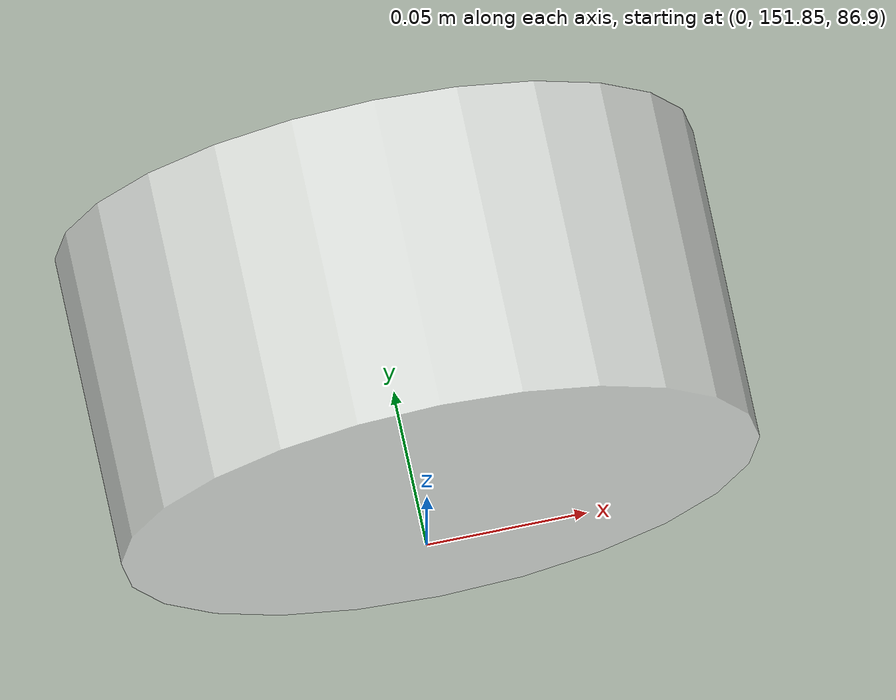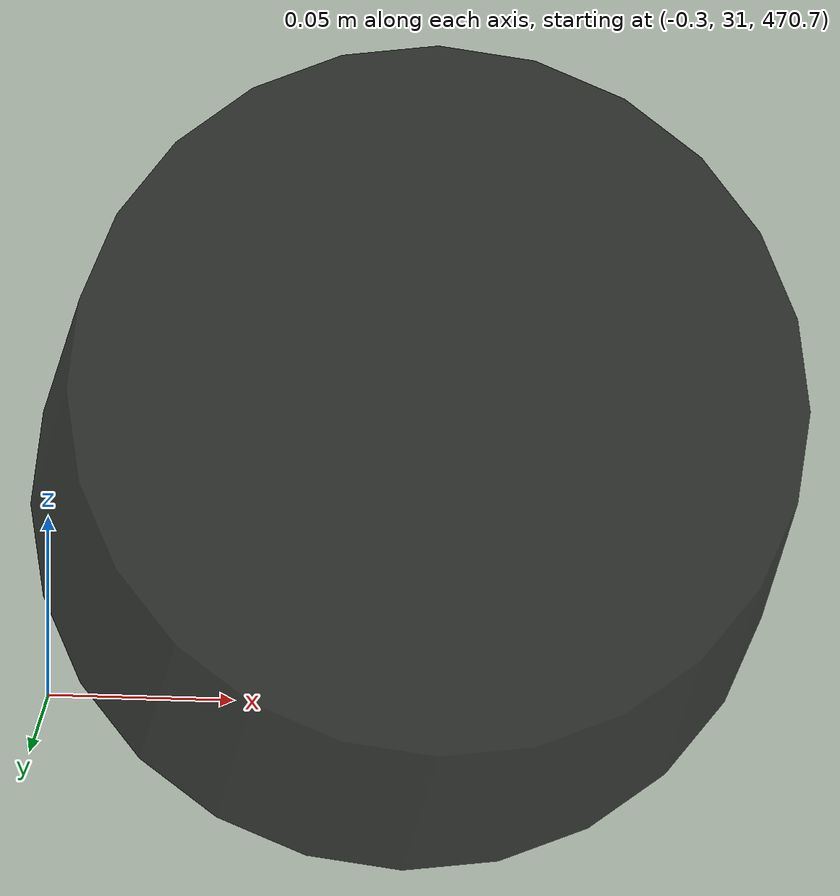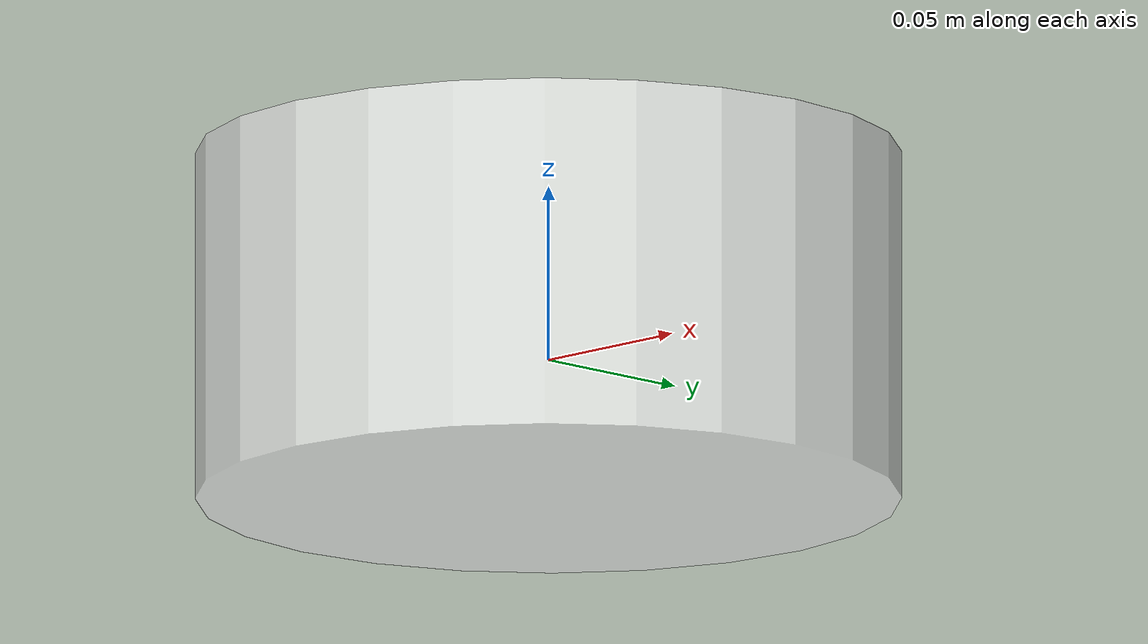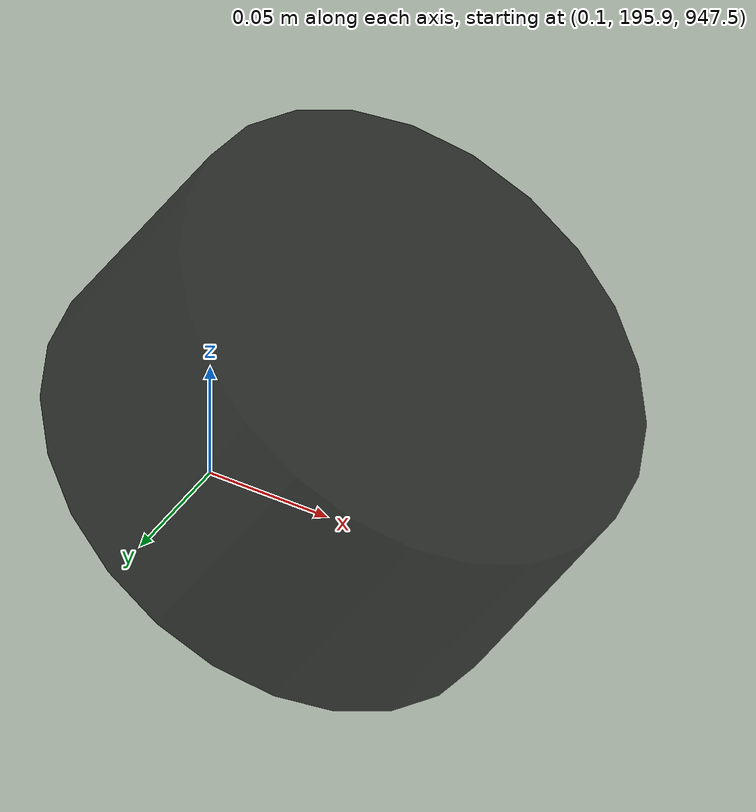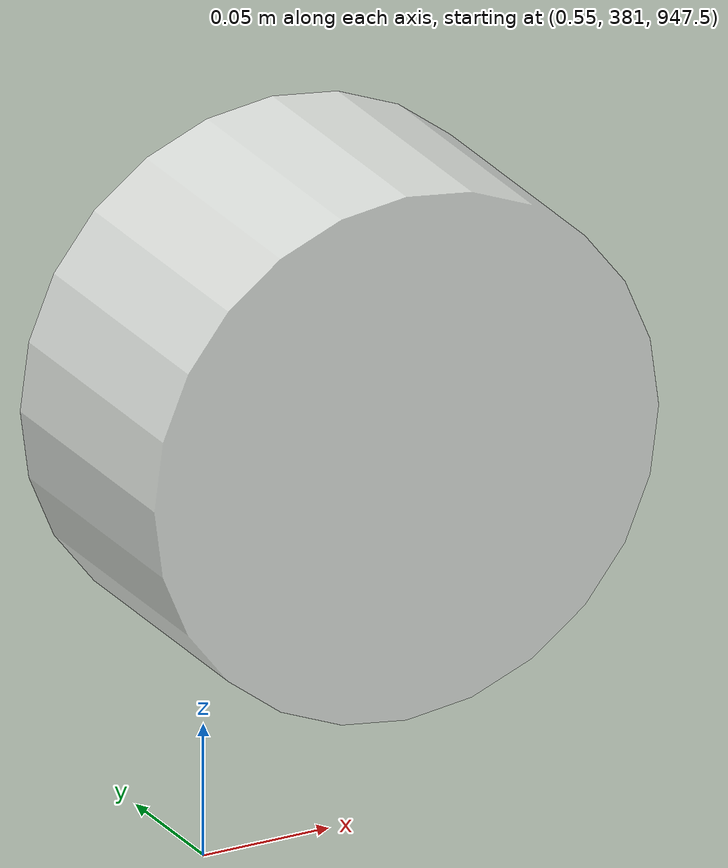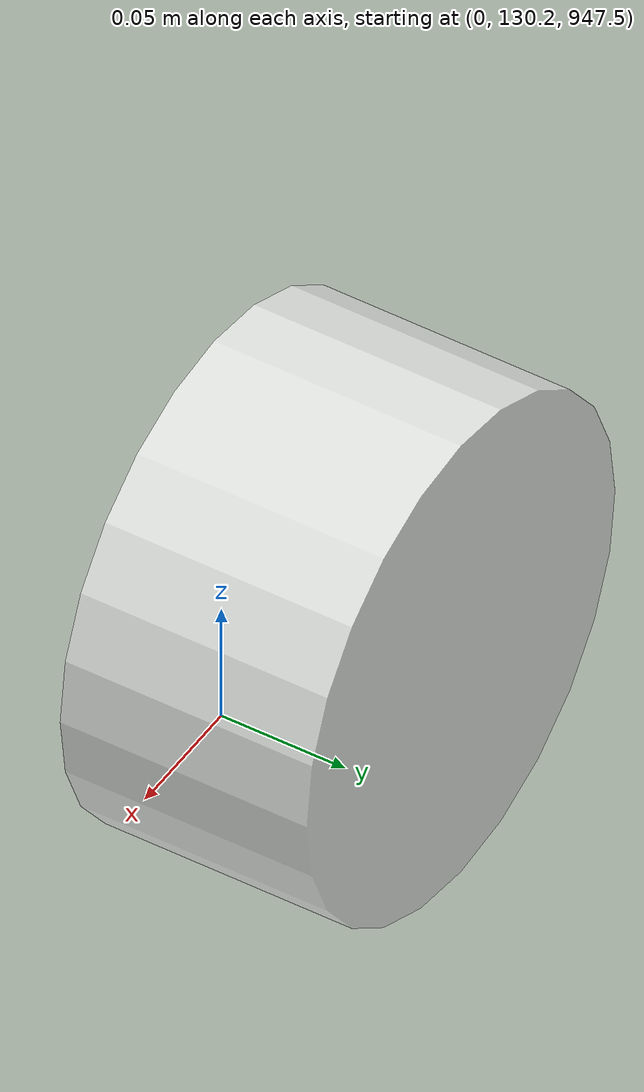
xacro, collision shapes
<?xml version="1.0" ?>
 <robot name="mr5" xmlns:xacro="http://ros.org/wiki/xacro">

  <xacro:include filename="$(find mr5_v5)/urdf/xacro/common.xacro"/>

  <property name="base_mass" value="4.7" />
  <property name="shoulder_mass" value="4.7" />
  <property name="link1" value="1" />
  <property name="elbow" value="2.8" />
  <property name="link2" value="1.6" />
  <property name="wrist1" value="1.6" />
  <property name="wrist2" value="1.6" />
  <property name="wrist3" value="1.6" />

  <link name="base_footprint"/>

  <joint name="base_joint" type="fixed">
    <parent link="base_footprint"/>
    <child link="base" />
    <origin xyz="0 0 0.010" rpy="0 0 ${pi*0.5}"/>
  </joint>

  <link name="base">
      <visual>
        <geometry>
          <mesh filename="package://mr5_v5/urdf/meshes/25BASEPAN.stl" scale="0.1 0.1 0.1"/>
        </geometry>
        <origin xyz="0 0 15" rpy="0 0 0"/>
        <material name ="write"/>
      </visual>
    <collision>
        <geometry>
          <cylinder length="0.1" radius="0.1"/>
        </geometry>
    </collision>

    <xacro:cylinder_inertial length="0.75" radius="0.5" mass="${base_mass}">
    </xacro:cylinder_inertial>
  </link>

  <joint name="joint1" type="revolute">
      <parent link="base"/>
      <child link="mr25_1"/>
      <origin xyz="0 0 87" rpy="0 0 0" />
      <axis xyz="0 0 1"/>
      <limit effort="30" lower="-3.14" upper="3.14" velocity="1.517"/>
    </joint>

  <link name="mr25_1">
      <visual>
        <geometry>
          <mesh filename="package://mr5_v5/urdf/meshes/25_ASM.stl"  scale="0.1 0.1 0.1"/>
        </geometry>
        <!--origin xyz="0 -61.835 43.5" rpy="0 0 0"/-->
        <origin xyz="61.831 0 -15.28" rpy="0 1.57 1.57"/>
        <material name ="black"/>
      </visual>
    <collision>
        <geometry>
          <cylinder length="0.1" radius="0.1"/>
        </geometry>
    </collision>
    <xacro:cylinder_inertial length="0.6" radius="0.2" mass="${shoulder_mass}">
    </xacro:cylinder_inertial>
  </link>

    <joint name="joint2" type="revolute">
      <parent link="mr25_1"/>
      <child link="mr25_2"/>
      <!--origin xyz="-87 0 -151.88" rpy="1.57 -1.57 1.57" /-->
      <origin xyz="151.88 0 0" rpy="0 -1.57 3.14"/>
      <axis xyz="0 0 1"/>
      <limit effort="30" lower="-1.04" upper="1.04" velocity="1.517"/>
    </joint>

    <link name="mr25_2">
      <visual>
        <geometry>
          <!--box size="10 10 151.88"/-->
          <mesh filename="package://mr5_v5/urdf/meshes/25_ASM.stl"  scale="0.1 0.1 0.1"/>
        </geometry>
        <origin xyz="61.831 0 -15.28" rpy="-1.57 1.57 0"/>
        <material name ="write"/>
      </visual>
    <collision>
        <geometry>
          <cylinder length="0.1" radius="0.1"/>
        </geometry>
    </collision>
    <xacro:cylinder_inertial length="0.6" radius="0.2" mass="${link1}">
    </xacro:cylinder_inertial>
    </link>

    <joint name="fix_1" type="revolute">
      <parent link="mr25_2"/>
      <child link="link1"/>
      <origin xyz="0 0 0" rpy="0 0 0" />
      <axis xyz="0 0 1"/>
      <limit effort="0" lower="0" upper="0" velocity="0"/>
    </joint>

  <link name="link1">
      <visual>
        <geometry>
          <!--box size="383.88 10 10 "/-->
          <mesh filename="package://mr5_v5/urdf/meshes/25to20.stl"  scale="0.1 0.1 0.1"/>
        </geometry>
        <origin xyz="157.935 0 0" rpy="0 0 -1.57"/>
        <material name ="black"/>
      </visual>
    <collision>
        <geometry>
          <cylinder length="0.1" radius="0.1"/>
        </geometry>
    </collision>
    <xacro:cylinder_inertial length="0.6" radius="0.2" mass="${elbow}">
    </xacro:cylinder_inertial>
    </link>

    <joint name="fix_2" type="revolute">
      <parent link="link1"/>
      <child link="mr20"/>
      <origin xyz="383.88 0 0" rpy="0 0 0" />
      <axis xyz="0 0 1"/>
      <limit effort="0" lower="0" upper="0" velocity="0"/>
    </joint>

    <link name="mr20">
      <visual>
        <geometry>
          <!--box size="10 10 -120.5 "/-->
          <mesh filename="package://mr5_v5/urdf/meshes/20_ASM.stl"  scale="0.01 0.01 0.01"/>
        </geometry>
        <origin xyz="0 0 55.5" rpy="3.14 0 1.57"/>
        <material name ="write"/>
      </visual>
    <collision>
        <geometry>
          <cylinder length="0.1" radius="0.1"/>
        </geometry>
    </collision>
    <xacro:cylinder_inertial length="0.6" radius="0.2" mass="${link2}">
    </xacro:cylinder_inertial>
    </link>

    <joint name="joint3" type="revolute">
      <parent link="mr20"/>
      <child link="link2_1"/>
      <origin xyz="0 0 -120.5" rpy="0 0 0" />
      <axis xyz="0 0 1"/>
      <limit effort="30" lower="-3.14" upper="0" velocity="1.517"/>
    </joint>

    <link name="link2_1">
      <visual>
        <geometry>
          <!--box size="376.5 10 10 "/-->
          <mesh filename="package://mr5_v5/urdf/meshes/link_elbow.stl"  scale="0.01 0.01 0.01"/>
        </geometry>
        <origin xyz="-54.1 0 0" rpy="-1.57 0 -1.57"/>
        <material name ="black"/>
      </visual>
    <collision>
        <geometry>
          <cylinder length="0.1" radius="0.1"/>
        </geometry>
    </collision>
    <xacro:cylinder_inertial length="0.4" radius="0.2" mass="${wrist1}">
    </xacro:cylinder_inertial>
    </link>

    <joint name="fix_3" type="revolute">
      <parent link="link2_1"/>
      <child link="link2_2"/>
      <origin xyz="0 0 0" rpy="0 0 0" />
      <axis xyz="0 0 1"/>
      <limit effort="0" lower="0" upper="0" velocity="0"/>
    </joint>

    <link name="link2_2">
      <visual>
        <geometry>
          <!--box size="10 10 99.5 "/-->
          <mesh filename="package://mr5_v5/urdf/meshes/20to14.stl"  scale="0.01 0.01 0.01"/>
        </geometry>
        <!--origin xyz="-354 0 -120.5" rpy="0 0 -1.57"/-->
        <origin xyz="22.5 0 0" rpy="0 0 -1.57"/>
        <material name ="write"/>
      </visual>
    <collision>
        <geometry>
          <cylinder length="0.1" radius="0.1"/>
        </geometry>
    </collision>
    <xacro:cylinder_inertial length="0.6" radius="0.2" mass="${wrist2}">
    </xacro:cylinder_inertial>
    </link>

    <joint name="fix_4" type="revolute">
      <parent link="link2_2"/>
      <child link="mr14_1"/>
    <origin xyz="376.5 0 0" rpy="3.14 0 0" />
      <axis xyz="0 0 1"/>
      <limit effort="0" lower="0" upper="0" velocity="0"/>
    </joint>

    <link name="mr14_1">
      <visual>
        <geometry>
          <!--box size="10 10 100.25"/-->
          <mesh filename="package://mr5_v5/urdf/meshes/14Series.stl" scale="0.01 0.01 0.01"/>
        </geometry>
        <origin xyz="0 0 -64" rpy="3.14 0 -1.57"/>
        <material name ="black"/>
      </visual>
    <collision>
        <geometry>
          <cylinder length="0.1" radius="0.1"/>
        </geometry>
    </collision>
    <xacro:cylinder_inertial length="0.6" radius="0.2" mass="${wrist3}">
    </xacro:cylinder_inertial>
    </link>

    <joint name="joint4" type="revolute">
      <parent link="mr14_1"/>
      <child link="mr14_2"/>
      <origin xyz="0 0 -99.5" rpy="1.57 0 -1.57" />
      <axis xyz="0 1 0"/>
      <limit effort="30" lower="0" upper="3.14" velocity="1.517"/>
    </joint>

  <link name="mr14_2">
      <visual>
        <geometry>
          <!--box size="10 10 53.25"/-->
          <mesh filename="package://mr5_v5/urdf/meshes/14Series.stl" scale="0.01 0.01 0.01"/>
        </geometry>
        <origin xyz="0 0 -64.75" rpy="0 3.14 0"/>
        <material name ="write"/>
      </visual>
    <collision>
        <geometry>
          <cylinder length="0.1" radius="0.1"/>
        </geometry>
    </collision>
    <xacro:cylinder_inertial length="0.6" radius="0.2" mass="1">
    </xacro:cylinder_inertial>
    </link>

    <joint name="joint5" type="revolute">
      <parent link="mr14_2"/>
      <child link="mr14_3"/>
      <!--origin xyz="0 0 -100.25" rpy="1.57 3.14 0" /-->
      <origin xyz="0 0 -100.25" rpy="-1.57 1.57 0" />
      <axis xyz="1 0 0"/>
      <limit effort="30" lower="-3.14" upper="3.14" velocity="1.517"/>
    </joint>

    <link name="mr14_3">
      <visual>
        <geometry>
          <!--box size="10 10 53.25"/-->
          <mesh filename="package://mr5_v5/urdf/meshes/14Series.stl" scale="0.01 0.01 0.01"/>
        </geometry>
        <!--origin xyz="0 0 -64.75" rpy="0 3.14 3.14"/-->
        <origin xyz="0 0 -64.75" rpy="3.14 0 -1.57"/>
        <material name ="write"/>
      </visual>
        <collision>
        <geometry>
          <cylinder length="0.1" radius="0.1"/>
        </geometry>
    </collision>
    <xacro:cylinder_inertial length="0.6" radius="0.2" mass="1">
    </xacro:cylinder_inertial>
    </link>

  <joint name="joint6" type="revolute">
    <parent link="mr14_3"/>
    <child link="mr14tocamera"/>
    <!--origin xyz="0 0 -65.7" rpy="3.14 0 1.57"/-->
    <origin xyz="0 0 -65.7" rpy="0 0 0"/>
    <axis xyz="0 0 1"/>
    <limit effort="30" lower="-3.14" upper="3.14" velocity="1.517"/>
  </joint>

  <link name="mr14tocamera">
    <visual>
      <geometry>

        <mesh filename="package://mr5_v5/urdf/meshes/mr14tocamera.stl" scale="0.01 0.01 0.01"/>
      </geometry>
      <!--origin xyz="0 0 -12.5" rpy="0 0 0"/-->
      <origin xyz="0 0 12.5" rpy="3.14 0 1.57"/>
      <material name ="black"/>
    </visual>
      <collision>
      <geometry>
          <cylinder length="0.1" radius="0.1"/>
      </geometry>
  </collision>
    <xacro:cylinder_inertial length="0.6" radius="0.2" mass="1">
    </xacro:cylinder_inertial>
  </link>

  <joint name="fix_5" type="revolute">
    <parent link="mr14tocamera"/>
    <child link="gripper"/>
  <origin xyz="0 0 -185.1" rpy="0 0 0" />
    <axis xyz="0 0 1"/>
    <limit effort="0" lower="0" upper="0" velocity="0"/>
  </joint>

  <link name="gripper">
    <visual>
      <geometry>
        <mesh filename="package://mr5_v5/urdf/meshes/parallel_assy_asm.stl" scale="0.01 0.01 0.01"/>
      </geometry>
      <!--origin xyz="0 0 -128.8" rpy="-1.57 3.14 0"/-->
      <origin xyz="0 0 128.8" rpy="-1.57 0 -1.57"/>
      <material name ="write"/>
    </visual>
      <collision>
      <geometry>
          <cylinder length="0.1" radius="0.1"/>
      </geometry>
  </collision>
    <xacro:cylinder_inertial length="0.6" radius="0.2" mass="1">
    </xacro:cylinder_inertial>
  </link>

</robot>

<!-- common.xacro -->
<robot
  xmlns:xacro="http://ros.org/wiki/xacro">
  <property name="M_PI" value="3.1415926535897931" />

  <!-- see https://secure.wikimedia.org/wikipedia/en/wiki/List_of_moment_of_inertia_tensors -->

  <material name ="black">
    <color rgba = "0.0 0.0 0.0 0.7"/>
  </material>
    <material name ="write">
    <color rgba = "1.0 1.0 1.0 0.7"/>
  </material>
  <!-- #################### versions without origin #################### -->
  <xacro:macro name="sphere_inertial_xyz" params="radius mass x y z">
    <inertial>
      <mass value="${mass}" />
      <origin xyz="${x} ${y} ${z}" />
      <inertia ixx="${0.4 * mass * radius * radius}" ixy="0.0" ixz="0.0"
        iyy="${0.4 * mass * radius * radius}" iyz="0.0"
        izz="${0.4 * mass * radius * radius}" />
    </inertial>
  </xacro:macro>

  <xacro:macro name="sphere_inertial" params="radius mass">
    <inertial>
      <mass value="${mass}" />
      <origin xyz="0 0 0" />
      <inertia ixx="${0.4 * mass * radius * radius}" ixy="0.0" ixz="0.0"
        iyy="${0.4 * mass * radius * radius}" iyz="0.0"
        izz="${0.4 * mass * radius * radius}" />
    </inertial>
  </xacro:macro>

  <xacro:macro name="cylinder_inertial_xyz" params="radius length mass x y z">
    <inertial>
      <mass value="${mass}" />
      <origin xyz="${x} ${y} ${z}" />
      <inertia ixx="${0.0833333 * mass * (3 * radius * radius + length * length)}" ixy="0.0" ixz="0.0"
        iyy="${0.0833333 * mass * (3 * radius * radius + length * length)}" iyz="0.0"
        izz="${0.5 * mass * radius * radius}" />
    </inertial>
  </xacro:macro>

  <xacro:macro name="cylinder_inertial" params="radius length mass">
    <inertial>
      <mass value="${mass}" />
      <origin xyz="0 0 0" />
      <inertia ixx="${0.0833333 * mass * (3 * radius * radius + length * length)}" ixy="0.0" ixz="0.0"
        iyy="${0.0833333 * mass * (3 * radius * radius + length * length)}" iyz="0.0"
        izz="${0.5 * mass * radius * radius}" />
    </inertial>
  </xacro:macro>

  <xacro:macro name="box_inertial" params="x y z mass">
    <inertial>
      <mass value="${mass}" />
      <origin xyz="0 0 0" />
      <inertia ixx="${0.0833333 * mass * (y*y + z*z)}" ixy="0.0" ixz="0.0"
        iyy="${0.0833333 * mass * (x*x + z*z)}" iyz="0.0"
        izz="${0.0833333 * mass * (x*x + y*y)}" />
    </inertial>
  </xacro:macro>

  <!-- #################### versions with origin #################### -->
  <xacro:macro name="sphere_inertial_with_origin" params="radius mass *origin">
    <inertial>
      <mass value="${mass}" />
      <insert_block name="origin" />
      <inertia ixx="${0.4 * mass * radius * radius}" ixy="0.0" ixz="0.0"
        iyy="${0.4 * mass * radius * radius}" iyz="0.0"
        izz="${0.4 * mass * radius * radius}" />
    </inertial>
  </xacro:macro>

  <xacro:macro name="cylinder_inertial_with_origin" params="radius length mass *origin">
    <inertial>
      <mass value="${mass}" />
      <insert_block name="origin" />
      <inertia ixx="${0.0833333 * mass * (3 * radius * radius + length * length)}" ixy="0.0" ixz="0.0"
        iyy="${0.0833333 * mass * (3 * radius * radius + length * length)}" iyz="0.0"
        izz="${0.5 * mass * radius * radius}" />
    </inertial>
  </xacro:macro>

  <xacro:macro name="box_inertial_with_origin" params="x y z mass *origin">
    <inertial>
      <mass value="${mass}" />
      <insert_block name="origin" />
      <inertia ixx="${0.0833333 * mass * (y*y + z*z)}" ixy="0.0" ixz="0.0"
        iyy="${0.0833333 * mass * (x*x + z*z)}" iyz="0.0"
        izz="${0.0833333 * mass * (x*x + y*y)}" />
    </inertial>
  </xacro:macro>

</robot>
